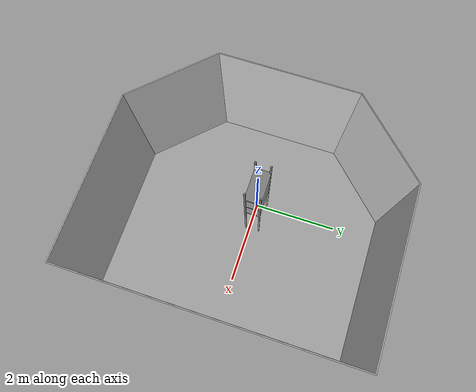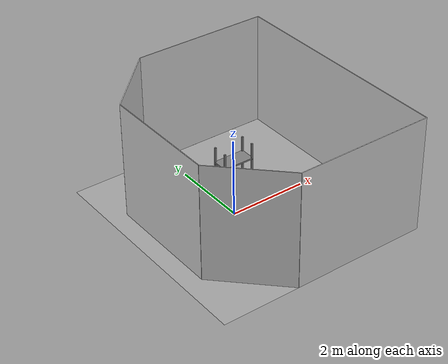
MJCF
<mujoco model="shelf_arena">
  <asset>
    <!-- 复用原有资产 -->
    <texture builtin="gradient" height="256" rgb1=".9 .9 1." rgb2=".2 .3 .4" type="skybox" width="256"/>
    <texture file="../textures/light-gray-floor-tile.png" type="2d" name="texplane"/>
    <material name="floorplane" reflectance="0.01" shininess="0.0" specular="0.0" texrepeat="2 2" texture="texplane" texuniform="true"/>

    <!-- 陶瓷材质 (用于货架隔板) -->
    <texture file="../textures/ceramic.png" type="cube" name="tex-ceramic"/>
    <material name="shelf_ceramic" reflectance="0.0" shininess="0.0" specular="0.2" texrepeat="1 1" texture="tex-ceramic" />

    <!-- 钢材材质 (用于货架立柱) -->
    <texture file="../textures/steel-brushed.png" type="cube" name="tex-steel-brushed"/>
    <material name="shelf_legs_metal" reflectance="0.8" shininess="0.8" texrepeat="1 1" texture="tex-steel-brushed" />

    <!-- 墙壁材质 -->
    <texture file="../textures/light-gray-plaster.png" type="2d" name="tex-light-gray-plaster"/>
    <material name="walls_mat" reflectance="0.0" shininess="0.1" specular="0.1" texrepeat="3 3" texture="tex-light-gray-plaster" texuniform="true" />

    <!-- 备用材质 -->
    <texture name="textshelf" builtin="flat" height="512" width="512" rgb1="0.5 0.5 0.5" rgb2="0.5 0.5 0.5"/>
    <material name="shelf_mat" texture="textshelf" />
  </asset>

  <worldbody>
    <!-- Floor (不变) -->
    <geom condim="3" group="1" material="floorplane" name="floor" pos="0 0 0" size="3 3 .125" type="plane"/>

    <!-- Walls (不变) -->
    <geom pos="-1.25 2.25 1.5" quat="0.6532815 0.6532815 0.2705981 0.2705981" size="1.06 1.5 0.01" type="box" conaffinity="0" contype="0" group="1" name="wall_leftcorner_visual" material="walls_mat"/>
    <geom pos="-1.25 -2.25 1.5" quat="0.6532815 0.6532815 -0.2705981 -0.2705981" size="1.06 1.5 0.01" type="box" conaffinity="0" contype="0" group="1" name="wall_rightcorner_visual" material="walls_mat"/>
    <geom pos="1.25 3 1.5" quat="0.7071 0.7071 0 0" size="1.75 1.5 0.01" type="box" conaffinity="0" contype="0" group="1" name="wall_left_visual" material="walls_mat"/>
    <geom pos="1.25 -3 1.5" quat="0.7071 -0.7071 0 0" size="1.75 1.5 0.01" type="box" conaffinity="0" contype="0" group="1" name="wall_right_visual" material="walls_mat"/>
    <geom pos="-2 0 1.5" quat="0.5 0.5 0.5 0.5" size="1.5 1.5 0.01" type="box" conaffinity="0" contype="0" group="1" name="wall_rear_visual" material="walls_mat"/>
    <geom pos="3 0 1.5" quat="0.5 0.5 -0.5 -0.5" size="3 1.5 0.01" type="box" conaffinity="0" contype="0" group="1" name="wall_front_visual" material="walls_mat"/>

    <!-- ================= 货架主体 (替换桌子) ================= -->
    <!--
       原桌子尺寸: size="0.4 0.4 0.4" (总宽0.8, 总深0.8, 总高0.8), 中心 pos="0 0 0.4"
       新货架设计:
       - 总宽 0.8m, 总深 0.8m, 总高 0.8m
       - 立柱: 4根, 位于四角
       - 隔板: 3层 (底, 中, 顶)
    -->
    <body name="shelf" pos="0 0 0">

      <!-- === 1. 碰撞体 (Collision) - 简化为一个整体或分块，这里分块以支持物体放置 === -->

      <!-- 4根立柱 (碰撞) -->
      <geom name="shelf_leg_1_col" pos="-0.38 -0.18 0.4" size="0.02 0.02 1.5" type="box" group="0" friction="1 0.005 0.0001"/>
      <geom name="shelf_leg_2_col" pos="0.38 -0.18 0.4" size="0.02 0.02 1.5" type="box" group="0" friction="1 0.005 0.0001"/>
      <geom name="shelf_leg_3_col" pos="-0.38 0.18 0.4" size="0.02 0.02 1.5" type="box" group="0" friction="1 0.005 0.0001"/>
      <geom name="shelf_leg_4_col" pos="0.38 0.18 0.4" size="0.02 0.02 1.5" type="box" group="0" friction="1 0.005 0.0001"/>

      <!-- 3层隔板 (碰撞) - 让盒子能放在上面 -->
      <!-- 底层 (离地0.02) -->
      <geom name="shelf_board_1_col" pos="0 0 0.5" size="0.4 0.2 0.02" type="box" group="0" friction="1 0.005 0.0001"/>
      <!-- 中层 (离地0.4) -->
      <geom name="shelf_board_2_col" pos="0 0 1.0" size="0.4 0.2 0.02" type="box" group="0" friction="1 0.005 0.0001"/>
      <!-- 顶层 (离地0.78) -->
      <geom name="shelf_board_3_col" pos="0 0 1.5" size="0.4 0.2 0.02" type="box" group="0" friction="1 0.005 0.0001"/>

      <!-- === 2. 视觉体 (Visual) - 只看不碰 === -->
      <geom pos="-0.38 -0.18 0.4" size="0.02 0.02 1.5" type="box" conaffinity="0" contype="0" group="1" name="shelf_leg_1_vis" material="shelf_legs_metal"/>
      <geom pos="0.38 -0.18 0.4" size="0.02 0.02 1.5" type="box" conaffinity="0" contype="0" group="1" name="shelf_leg_2_vis" material="shelf_legs_metal"/>
      <geom pos="-0.38 0.18 0.4" size="0.02 0.02 1.5" type="box" conaffinity="0" contype="0" group="1" name="shelf_leg_3_vis" material="shelf_legs_metal"/>
      <geom pos="0.38 0.18 0.4" size="0.02 0.02 1.5" type="box" conaffinity="0" contype="0" group="1" name="shelf_leg_4_vis" material="shelf_legs_metal"/>

      <geom pos="0 0 0.5" size="0.4 0.2 0.02" type="box" conaffinity="0" contype="0" group="1" name="shelf_board_1_vis" material="shelf_ceramic"/>
      <geom pos="0 0 1.0" size="0.4 0.2 0.02" type="box" conaffinity="0" contype="0" group="1" name="shelf_board_2_vis" material="shelf_ceramic"/>
      <geom pos="0 0 1.5" size="0.4 0.2 0.02" type="box" conaffinity="0" contype="0" group="1" name="shelf_board_3_vis" material="shelf_ceramic"/>

      <!-- 可选：添加一个 site 标记货架中心顶部，方便定位 -->
      <site pos="0 0 0.8" name="shelf_top" size="0.001 0.001 0.001" rgba="1 0 0 1"/>
    </body>
    <!-- ================= 货架结束 ================= -->

    <!-- Light (不变) -->
    <light pos="1.0 1.0 1.5" dir="-0.2 -0.2 -1" specular="0.3 0.3 0.3" directional="true" castshadow="false"/>

    <!-- side view -->
    <camera mode="fixed" name="sideview" pos="2.5 0 1.0" quat="0.707 0 0.707 0"/>
    <!-- bird view -->
    <camera mode="fixed" name="birdview" pos="-0.2 0 3.0" quat="0.7071 0 0 0.7071"/>
    <!-- agent view -->
    <camera mode="fixed" name="agentview" pos="0.5 0 1.35" quat="0.653 0.271 0.271 0.653"/>
    <!-- front view-->
    <camera mode="fixed" name="frontview" pos="-0 3.0 1.5" quat="-0.0251 -0.0278 0.6217 0.7824" />
  </worldbody>
</mujoco>
